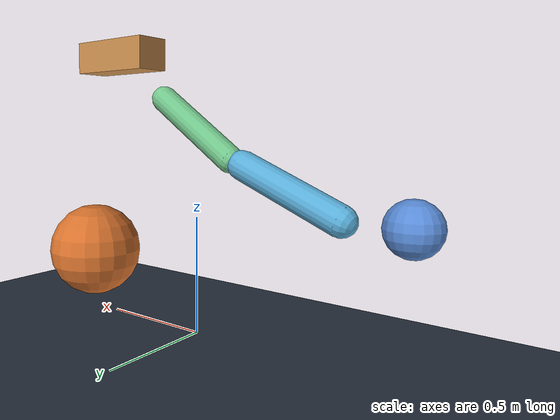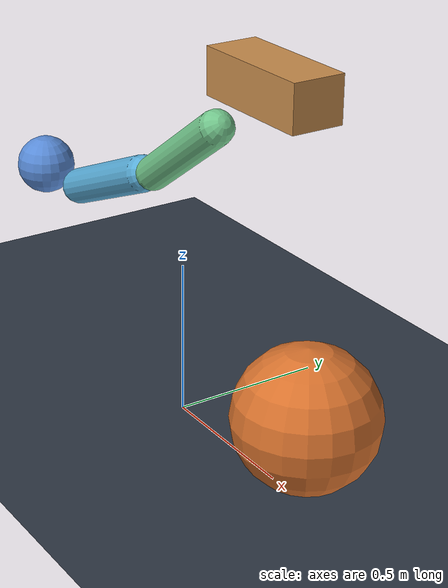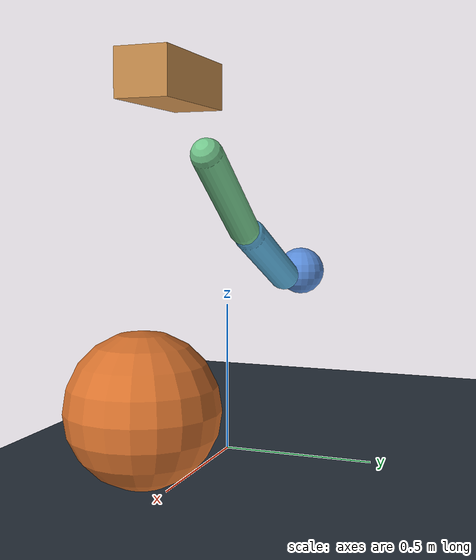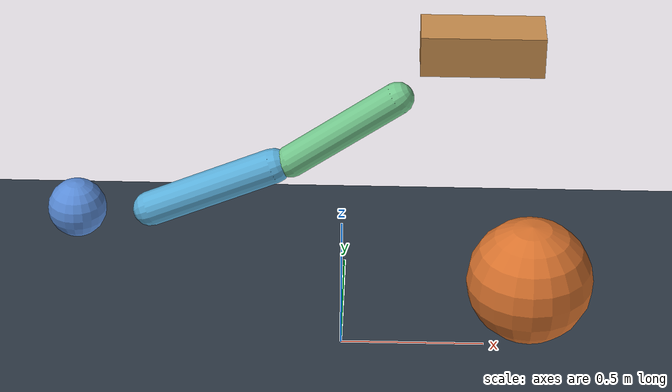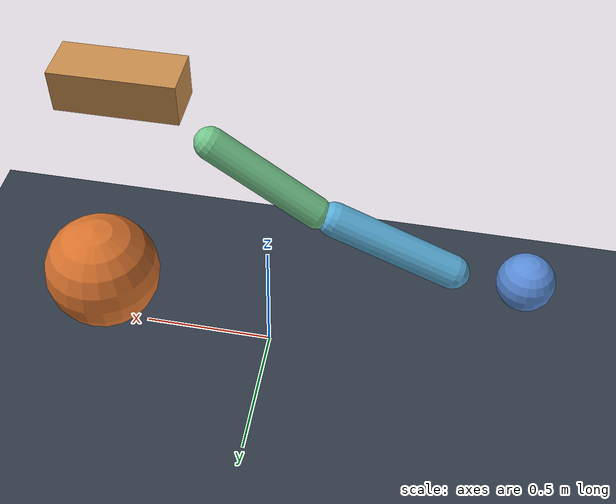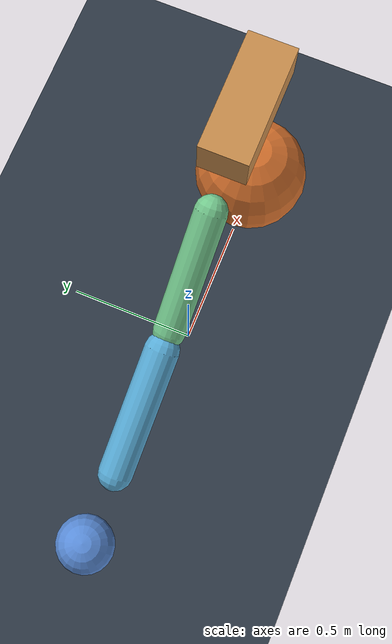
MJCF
<mujoco model="solver_diagnostics">
  <compiler angle="degree" autolimits="true"/>
  <option timestep="0.002" gravity="0 0 -9.81"/>

  <visual>
    <scale connect="0.025"/>
    <map force="0.008"/>
    <rgba connect="0.10 0.78 1.00 1" contactpoint="1.00 0.55 0.10 1"
          contactforce="1.00 0.30 0.15 1" contactfriction="0.95 0.85 0.15 1"/>
  </visual>

  <worldbody>
    <geom type="plane" size="0 0 0.05" rgba="0.18 0.22 0.27 1" friction="1 0.1 0.1"/>
    <light type="directional" pos="1 -2 4" dir="-0.2 0.3 -1"/>
    <camera name="overview" pos="2.2 -3.4 1.7" xyaxes="0.85 0.52 0 -0.25 0.41 0.88"/>

    <body name="chain_root" pos="-0.9 0 0.55">
      <geom type="sphere" size="0.10" group="1" rgba="0.35 0.55 0.85 1"/>
      <body name="link_0" pos="0.25 0 0">
        <joint name="joint_0" type="hinge" axis="0 1 0"/>
        <geom type="capsule" fromto="0 0 0 0.42 0 0.18" size="0.06" group="1"
              rgba="0.35 0.68 0.85 1"/>
        <body name="link_1" pos="0.48 0 0.20">
          <joint name="joint_1" type="hinge" axis="0 1 0"/>
          <geom type="capsule" fromto="0 0 0 0.35 0 0.25" size="0.055" group="1"
                rgba="0.45 0.78 0.55 1"/>
          <body name="link_2" pos="0.40 0 0.30">
            <joint name="joint_2" type="hinge" axis="1 0 0"/>
            <geom type="box" pos="0.22 0 0.15" size="0.20 0.08 0.07" group="1"
                  rgba="0.78 0.55 0.30 1"/>
          </body>
        </body>
      </body>
    </body>

    <body name="slider" pos="0.65 0 0.28">
      <freejoint/>
      <geom type="sphere" size="0.22" mass="2" rgba="0.85 0.45 0.18 1"
            friction="1 0.1 0.1"/>
    </body>
  </worldbody>
</mujoco>
